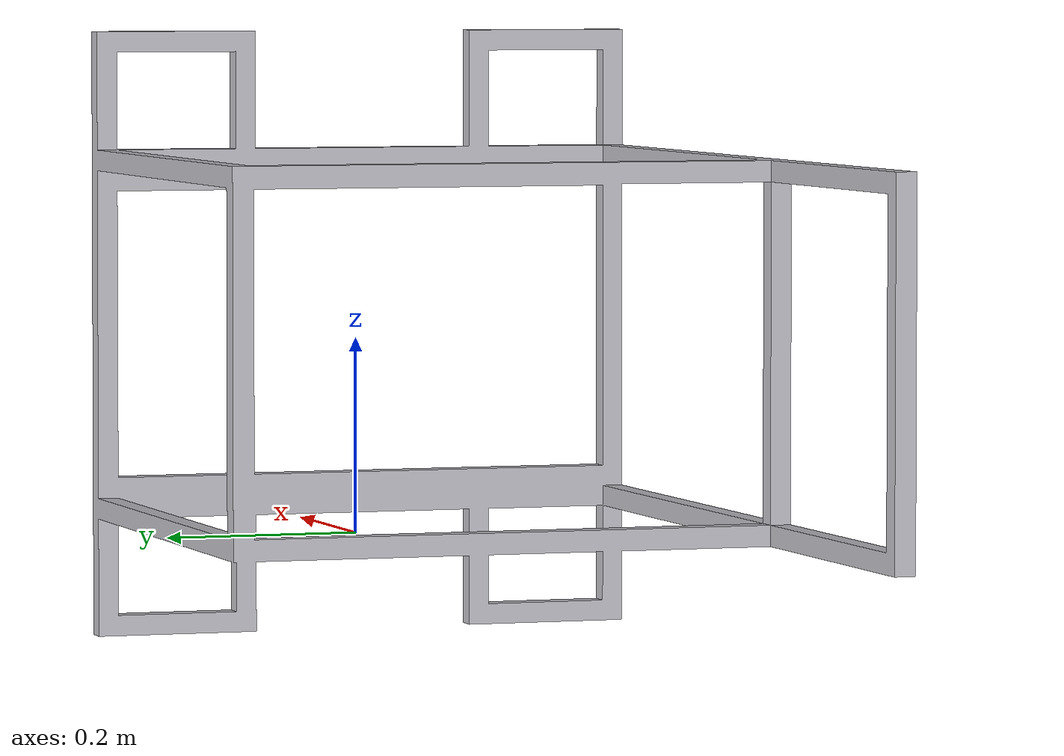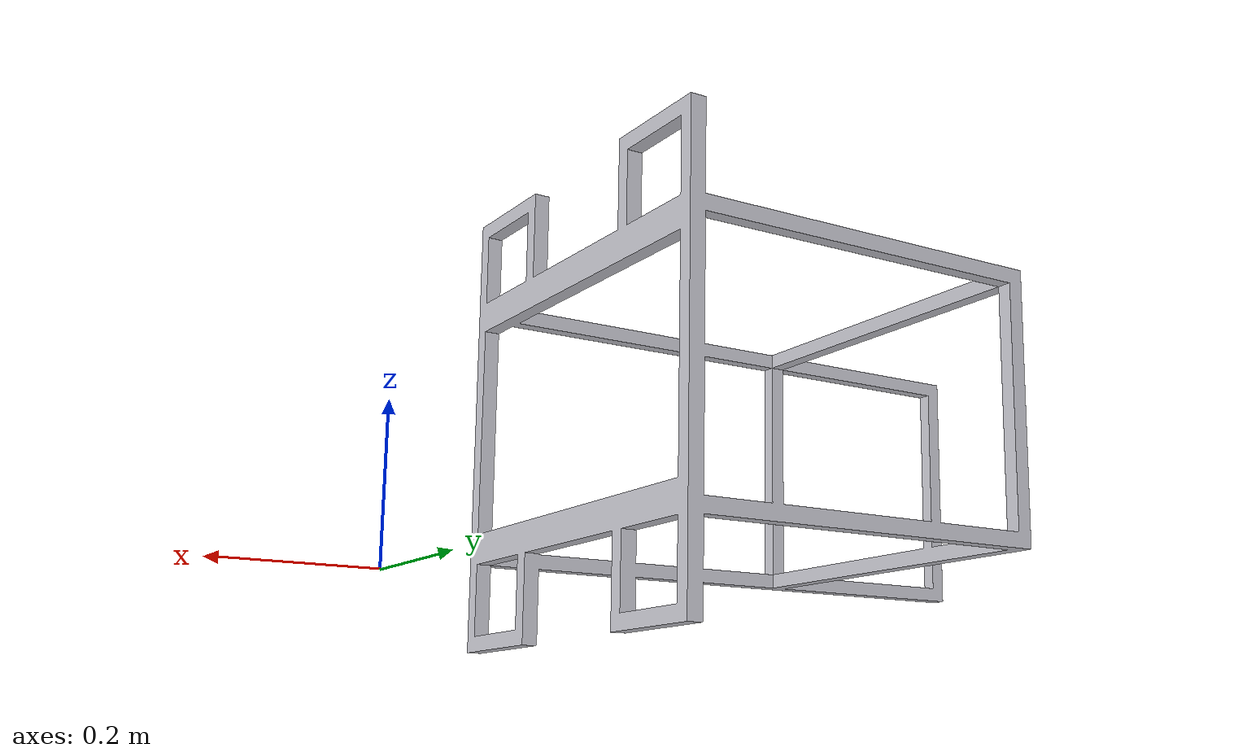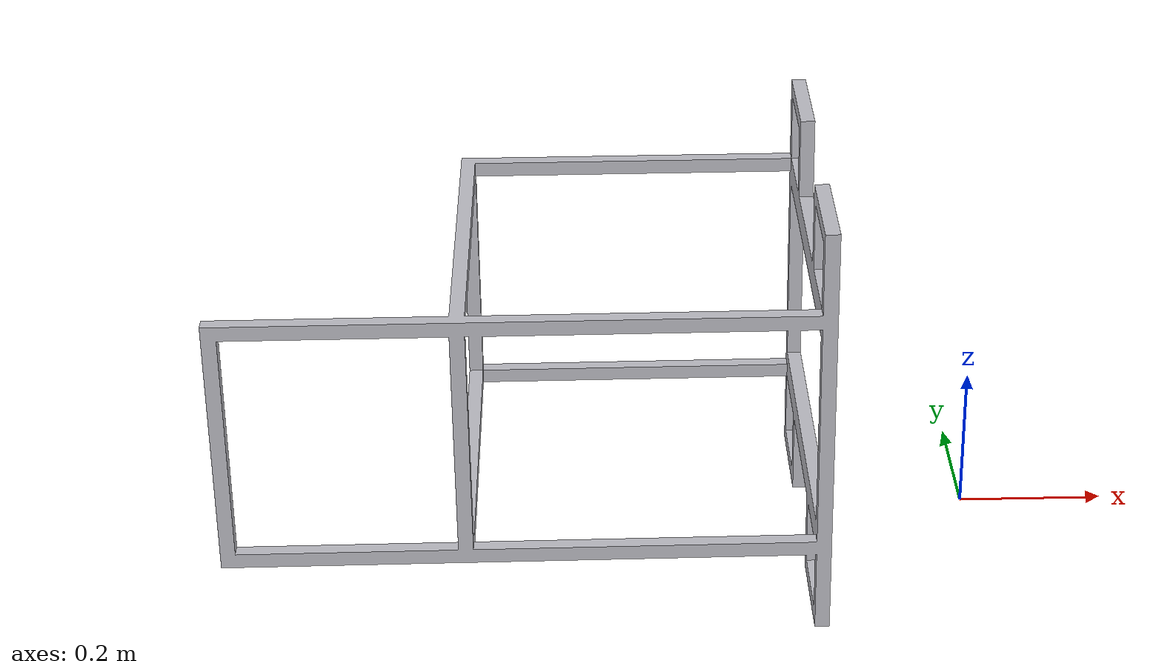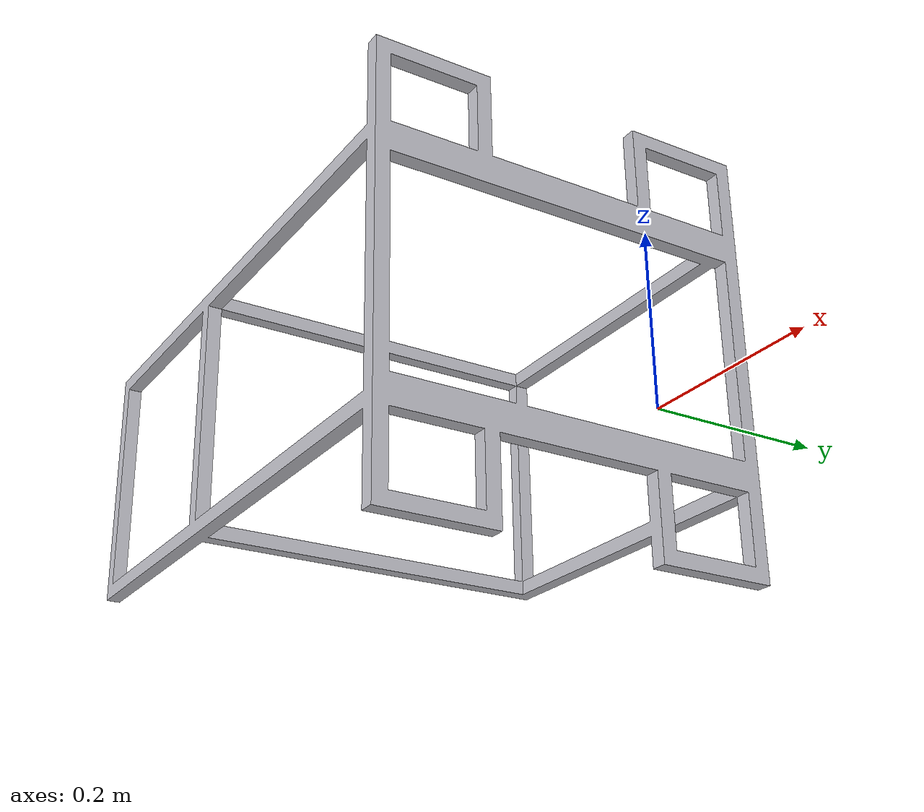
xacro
<?xml version="1.0" ?>
<robot name="urdf_base" xmlns:xacro="http://www.ros.org/wiki/xacro">

<xacro:include filename="$(find urdf_base_description)/urdf/materials.xacro" />
<xacro:include filename="$(find urdf_base_description)/urdf/urdf_base.trans" />
<xacro:include filename="$(find urdf_base_description)/urdf/urdf_base.gazebo" />
<link name="base_link">
  <inertial>
    <origin xyz="0 -0.05796470643710241 0" rpy="0 0 0"/>
    <mass value="19.185824620106327"/>
    <inertia ixx="1.44" iyy="1.663084" izz="1.844906" ixy="-0.192956" iyz="0.0" ixz="0.0"/>
  </inertial>
  <visual>
    <origin xyz="0 0 0" rpy="0 0 0"/>
    <geometry>
      <mesh filename="package://urdf_base_description/meshes/base_link.stl" scale="0.001 0.001 0.001"/>
    </geometry>
    <material name="silver"/>
  </visual>
  <collision>
    <origin xyz="0 0 0" rpy="0 0 0"/>
    <geometry>
      <mesh filename="package://urdf_base_description/meshes/base_link.stl" scale="0.001 0.001 0.001"/>
    </geometry>
  </collision>
</link>

</robot>

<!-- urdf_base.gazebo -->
<robot name="urdf_base" xmlns:xacro="http://www.ros.org/wiki/xacro" >

<xacro:property name="body_color" value="Gazebo/Silver" />

<gazebo>
  <plugin name="control" filename="libgazebo_ros_control.so"/>
</gazebo>
<gazebo reference="base_link">
  <material>${body_color}</material>
  <mu1>0.2</mu1>
  <mu2>0.2</mu2>
  <selfCollide>true</selfCollide>
  <gravity>true</gravity>
</gazebo>

</robot>
